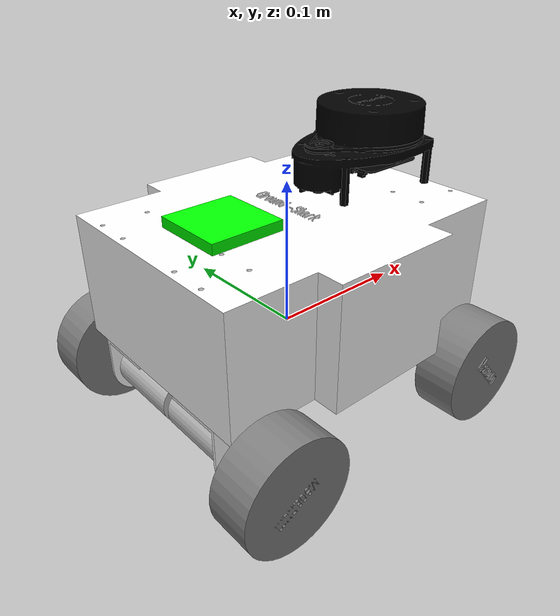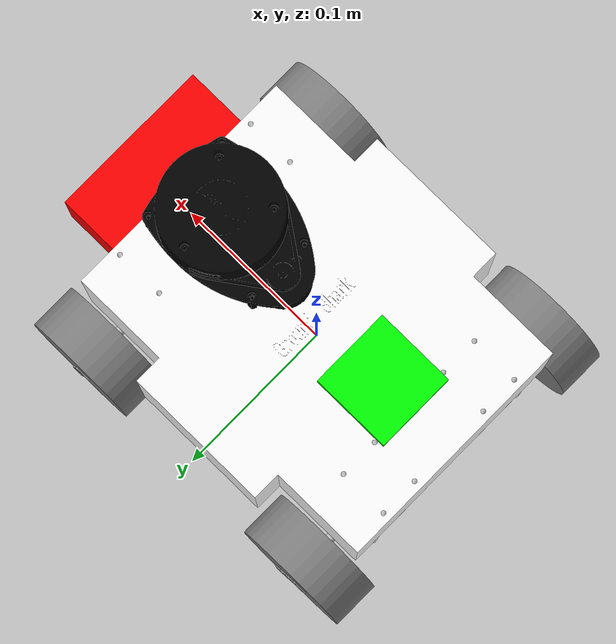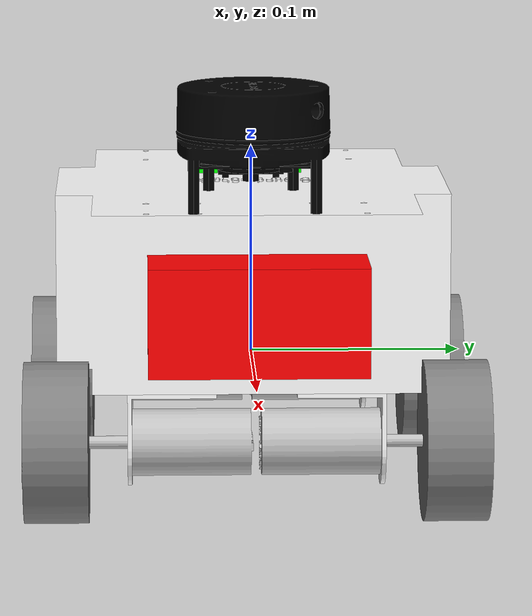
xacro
<?xml version="1.0" encoding="utf-8"?>
<!-- 仿真的目的是验证要行算法的有效性，所以简化控制流程，忽略麦克纳姆轮的运动学解算，-->
<!-- 直接认为车轮与车身是固定连接的，车身支持XY轴的平移和绕Z轴的旋转 -->
<!-- 也就是这个_fixed.urdf 只关心 Base_Link 即可，其他的都是多余的只影响视觉可删去 -->
<robot
    name="Ground-Shark_description" xmlns:xacro="http://ros.org/wiki/xacro">

    <!-- 引入Gazebo仿真所需的传感器和执行器 -->
    <xacro:include
        filename="$(find ground_shark_description)/urdf/Ground-Shark_description_fixed.gazebo.xacro" />

    <link name="base_footprint">
    </link>
    <joint
        name="footprint_joint"
        type="fixed">
        <origin
            xyz="0 0 0"
            rpy="0 0 0" />
        <parent
            link="base_footprint" />
        <child
            link="base_link" />
        <axis
            xyz="0 0 0" />
    </joint>
    <link
        name="base_link">
        <inertial>
            <origin
                xyz="2.5891E-08 2.6576E-08 0.041501"
                rpy="0 0 0" />
            <mass
                value="2.8841" />
            <inertia
                ixx="0.0085039"
                ixy="-1.3598E-10"
                ixz="-3.1189E-09"
                iyy="0.011435"
                iyz="-3.3424E-09"
                izz="0.016627" />
        </inertial>
        <visual>
            <origin
                xyz="0 0 0"
                rpy="0 0 0" />
            <geometry>
                <mesh
                    filename="package://ground_shark_description/meshes/Base_Link.STL" />
            </geometry>
            <material
                name="">
                <color
                    rgba="1 1 1 1" />
            </material>
        </visual>
        <collision>
            <origin
                xyz="0 0 0"
                rpy="0 0 0" />
            <geometry>
                <mesh
                    filename="package://ground_shark_description/meshes/Base_Link.STL" />
            </geometry>
        </collision>
    </link>
    <link name="imu_link">
        <inertial>
            <origin
                xyz="0 0 0"
                rpy="0 0 0" />
            <mass
                value="0.03513" />
            <inertia
                ixx="1e-5"
                ixy="0.0"
                ixz="0.0"
                iyy="1e-5"
                iyz="0.0"
                izz="1e-5" />
        </inertial>
        <visual>
            <origin
                xyz="0 0 0"
                rpy="0 0 0" />
            <geometry>
                <box size="0.05 0.05 0.01"></box>
            </geometry>
            <material
                name="green">
                <color
                    rgba="0 1 0 1" />
            </material>
        </visual>
        <collision>
            <origin
                xyz="0 0 0"
                rpy="0 0 0" />
            <geometry>
                <box size="0.05 0.05 0.01"></box>
            </geometry>
        </collision>
    </link>
    <joint
        name="imu_joint"
        type="fixed">
        <origin
            xyz="-0.05 0 0.085"
            rpy="0 0 0" />
        <parent
            link="base_link" />
        <child
            link="imu_link" />
        <axis
            xyz="0 0 0" />
    </joint>
    <link name="camera_link">
        <inertial>
            <origin
                xyz="0 0 0"
                rpy="0 0 0" />
            <mass
                value="0.073513" />
            <inertia
                ixx="1e-5"
                ixy="0.0"
                ixz="0.0"
                iyy="1e-5"
                iyz="0.0"
                izz="1e-5" />
        </inertial>
        <visual>
            <origin
                xyz="0 0 0"
                rpy="0 0 0" />
            <geometry>
                <box size="0.05 0.1 0.05"></box>
            </geometry>
            <material
                name="red">
                <color
                    rgba="1 0 0 1" />
            </material>
        </visual>
        <collision>
            <origin
                xyz="0 0 0"
                rpy="0 0 0" />
            <geometry>
                <box size="0.1 0.05 0.05"></box>
            </geometry>
        </collision>
    </link>
    <joint
        name="camera_joint"
        type="fixed">
        <origin
            xyz="0.12 0 0.04"
            rpy="0 0 0" />
        <parent
            link="base_link" />
        <child
            link="camera_link" />
        <axis
            xyz="0 0 0" />
    </joint>
    <link
        name="lidar_link">
        <inertial>
            <origin
                xyz="-0.011911 0.00042455 -0.023771"
                rpy="0 0 0" />
            <mass
                value="0.073513" />
            <inertia
                ixx="1.8143E-05"
                ixy="-3.1353E-07"
                ixz="3.2518E-07"
                iyy="2.3964E-05"
                iyz="1.0718E-08"
                izz="3.9441E-05" />
        </inertial>
        <visual>
            <origin
                xyz="0 0 0"
                rpy="0 0 0" />
            <geometry>
                <mesh
                    filename="package://ground_shark_description/meshes/Lader_Link.STL" />
            </geometry>
            <material
                name="black">
                <color
                    rgba="0 0 0 1" />
            </material>
        </visual>
        <collision>
            <origin
                xyz="0 0 0"
                rpy="0 0 0" />
            <geometry>
                <mesh
                    filename="package://ground_shark_description/meshes/Lader_Link.STL" />
            </geometry>
        </collision>
    </link>
    <joint
        name="Lidar_joint"
        type="fixed">
        <origin
            xyz="0.071496 -0.00087628 0.138"
            rpy="0 0 0" />
        <parent
            link="base_link" />
        <child
            link="lidar_link" />
        <axis
            xyz="0 0 0" />
    </joint>
    <link
        name="MotorBracket_FL_Link">
        <inertial>
            <origin
                xyz="-8.3267E-17 0.010181 -0.0087943"
                rpy="0 0 0" />
            <mass
                value="0.0060832" />
            <inertia
                ixx="2.1292E-06"
                ixy="4.3538E-21"
                ixz="-3.6923E-21"
                iyy="1.9108E-06"
                iyz="6.1537E-07"
                izz="1.8375E-06" />
        </inertial>
        <visual>
            <origin
                xyz="0 0 0"
                rpy="0 0 0" />
            <geometry>
                <mesh
                    filename="package://ground_shark_description/meshes/MotorBracket_FL_Link.STL" />
            </geometry>
            <material
                name="">
                <color
                    rgba="1 1 1 1" />
            </material>
        </visual>
        <collision>
            <origin
                xyz="0 0 0"
                rpy="0 0 0" />
            <geometry>
                <mesh
                    filename="package://ground_shark_description/meshes/MotorBracket_FL_Link.STL" />
            </geometry>
        </collision>
    </link>
    <joint
        name="MotorBracket_FL_joint"
        type="fixed">
        <origin
            xyz="0.085 0.037991 -0.002"
            rpy="0 0 0" />
        <parent
            link="base_link" />
        <child
            link="MotorBracket_FL_Link" />
        <axis
            xyz="0 0 0" />
    </joint>
    <link
        name="Motor_FL_Link">
        <inertial>
            <origin
                xyz="-9.5264704250142E-08 0.000494051151757539 -3.20373803028295E-07"
                rpy="0 0 0" />
            <mass
                value="0.0420923924205949" />
            <inertia
                ixx="1.37751524776014E-05"
                ixy="-1.14064183831158E-10"
                ixz="2.71882601075011E-10"
                iyy="4.99008312109064E-06"
                iyz="-3.84353111674059E-10"
                izz="1.3774517725084E-05" />
        </inertial>
        <visual>
            <origin
                xyz="0 0 0"
                rpy="0 0 0" />
            <geometry>
                <mesh
                    filename="package://ground_shark_description/meshes/Motor_FL_Link.STL" />
            </geometry>
            <material
                name="silvery">
                <color
                    rgba="0.7529411764705882 0.7529411764705882 0.7529411764705882 1" />
            </material>
        </visual>
        <collision>
            <origin
                xyz="0 0 0"
                rpy="0 0 0" />
            <!-- 碰撞这里可以改为简单的圆柱体 cyinder 来加快碰撞检测效率 -->
            <!-- 因为是麦克纳姆轮，实际中改为一个球体以表示能够万向移动 -->
            <geometry>
                <mesh
                    filename="package://ground_shark_description/meshes/Motor_FL_Link.STL" />
            </geometry>
        </collision>
    </link>
    <joint
        name="Motor_FL_joint"
        type="fixed">
        <origin
            xyz="0 -0.0079908 -0.0245"
            rpy="0 0 0" />
        <parent
            link="MotorBracket_FL_Link" />
        <child
            link="Motor_FL_Link" />
        <axis
            xyz="0 0 0" />
    </joint>
    <link
        name="Wheel_FL_Link">
        <inertial>
            <origin
                xyz="-1.7981E-07 -0.014993 -7.7803E-07"
                rpy="0 0 0" />
            <mass
                value="0.1326" />
            <inertia
                ixx="5.6556E-05"
                ixy="3.6894E-10"
                ixz="1.2476E-09"
                iyy="9.3196E-05"
                iyz="1.6011E-09"
                izz="5.655E-05" />
        </inertial>
        <visual>
            <origin
                xyz="0 0 0"
                rpy="0 0 0" />
            <geometry>
                <mesh
                    filename="package://ground_shark_description/meshes/Wheel_FL_Link.STL" />
            </geometry>
            <material
                name="gray">
                <color
                    rgba="0.5 0.5 0.5 1" />
            </material>
        </visual>
        <collision>
            <origin
                xyz="0 0 0"
                rpy="0 0 0" />
            <geometry>
                <mesh
                    filename="package://ground_shark_description/meshes/Wheel_FL_Link.STL" />
            </geometry>
        </collision>
    </link>
    <joint
        name="wheel_FL_joint"
        type="fixed">
        <origin
            xyz="0 0.0775 0"
            rpy="0 0 0" />
        <parent
            link="Motor_FL_Link" />
        <child
            link="Wheel_FL_Link" />
        <axis
            xyz="0 1 0" />
    </joint>
    <link
        name="MotorBracket_FR_Link">
        <inertial>
            <origin
                xyz="0 -0.0101809797663875 -0.00879428398855098"
                rpy="0 0 0" />
            <mass
                value="0.0060832210537672" />
            <inertia
                ixx="2.12921906667825E-06"
                ixy="-1.10839442466624E-21"
                ixz="1.63388096679982E-21"
                iyy="1.91083611877144E-06"
                iyz="-6.15365329682497E-07"
                izz="1.83749390010958E-06" />
        </inertial>
        <visual>
            <origin
                xyz="0 0 0"
                rpy="0 0 0" />
            <geometry>
                <mesh
                    filename="package://ground_shark_description/meshes/MotorBracket_FR_Link.STL" />
            </geometry>
            <material
                name="">
                <color
                    rgba="1 1 1 1" />
            </material>
        </visual>
        <collision>
            <origin
                xyz="0 0 0"
                rpy="0 0 0" />
            <geometry>
                <mesh
                    filename="package://ground_shark_description/meshes/MotorBracket_FR_Link.STL" />
            </geometry>
        </collision>
    </link>
    <joint
        name="MotorBracket_FR_joint"
        type="fixed">
        <origin
            xyz="0.085 -0.037991 -0.002"
            rpy="0 0 0" />
        <parent
            link="base_link" />
        <child
            link="MotorBracket_FR_Link" />
        <axis
            xyz="0 0 0" />
    </joint>
    <link
        name="Motor_FR_Link">
        <inertial>
            <origin
                xyz="-2.5972E-07 -0.00049405 -2.1038E-07"
                rpy="0 0 0" />
            <mass
                value="0.042092" />
            <inertia
                ixx="1.3774E-05"
                ixy="3.1167E-10"
                ixz="-3.1417E-11"
                iyy="4.9901E-06"
                iyz="2.5219E-10"
                izz="1.3775E-05" />
        </inertial>
        <visual>
            <origin
                xyz="0 0 0"
                rpy="0 0 0" />
            <geometry>
                <mesh
                    filename="package://ground_shark_description/meshes/Motor_FR_Link.STL" />
            </geometry>
            <material
                name="silvery">
                <color
                    rgba="0.7529411764705882 0.7529411764705882 0.7529411764705882 1" />
            </material>
        </visual>
        <collision>
            <origin
                xyz="0 0 0"
                rpy="0 0 0" />
            <geometry>
                <mesh
                    filename="package://ground_shark_description/meshes/Motor_FR_Link.STL" />
            </geometry>
        </collision>
    </link>
    <joint
        name="Motor_FR_joint"
        type="fixed">
        <origin
            xyz="0 0.0079908 -0.0245"
            rpy="0 0 0" />
        <parent
            link="MotorBracket_FR_Link" />
        <child
            link="Motor_FR_Link" />
        <axis
            xyz="0 0 0" />
    </joint>
    <link
        name="Wheel_FR_Link">
        <inertial>
            <origin
                xyz="7.27954014193011E-07 0.014992834588668 -3.28245396627458E-07"
                rpy="0 0 0" />
            <mass
                value="0.132597246667057" />
            <inertia
                ixx="5.65534796346194E-05"
                ixy="1.49742001797579E-09"
                ixz="3.00605535168159E-09"
                iyy="9.31961918555651E-05"
                iyz="-6.7636944845642E-10"
                izz="5.65525507281201E-05" />
        </inertial>
        <visual>
            <origin
                xyz="0 0 0"
                rpy="0 0 0" />
            <geometry>
                <mesh
                    filename="package://ground_shark_description/meshes/Wheel_FR_Link.STL" />
            </geometry>
            <material
                name="gray">
                <color
                    rgba="0.5 0.5 0.5 1" />
            </material>
        </visual>
        <collision>
            <origin
                xyz="0 0 0"
                rpy="0 0 0" />
            <geometry>
                <mesh
                    filename="package://ground_shark_description/meshes/Wheel_FR_Link.STL" />
            </geometry>
        </collision>
    </link>
    <joint
        name="wheel_FR_joint"
        type="fixed">
        <origin
            xyz="0 -0.0775 0"
            rpy="0 0 0" />
        <parent
            link="Motor_FR_Link" />
        <child
            link="Wheel_FR_Link" />
        <axis
            xyz="0 -1 0" />
    </joint>
    <link
        name="MotorBracket_BL_Link">
        <inertial>
            <origin
                xyz="-5.5511E-17 0.010181 -0.0087943"
                rpy="0 0 0" />
            <mass
                value="0.0060832" />
            <inertia
                ixx="2.1292E-06"
                ixy="3.0379E-21"
                ixz="-3.2873E-21"
                iyy="1.9108E-06"
                iyz="6.1537E-07"
                izz="1.8375E-06" />
        </inertial>
        <visual>
            <origin
                xyz="0 0 0"
                rpy="0 0 0" />
            <geometry>
                <mesh
                    filename="package://ground_shark_description/meshes/MotorBracket_BL_Link.STL" />
            </geometry>
            <material
                name="">
                <color
                    rgba="1 1 1 1" />
            </material>
        </visual>
        <collision>
            <origin
                xyz="0 0 0"
                rpy="0 0 0" />
            <geometry>
                <mesh
                    filename="package://ground_shark_description/meshes/MotorBracket_BL_Link.STL" />
            </geometry>
        </collision>
    </link>
    <joint
        name="MotorBracket_BL_joint"
        type="fixed">
        <origin
            xyz="-0.085 0.037991 -0.002"
            rpy="0 0 0" />
        <parent
            link="base_link" />
        <child
            link="MotorBracket_BL_Link" />
        <axis
            xyz="0 0 0" />
    </joint>
    <link
        name="Motor_BL_Link">
        <inertial>
            <origin
                xyz="-9.52647042362642E-08 0.000494051151757761 -3.20373802972784E-07"
                rpy="0 0 0" />
            <mass
                value="0.0420923924205944" />
            <inertia
                ixx="1.37751524776011E-05"
                ixy="-1.14064183836825E-10"
                ixz="2.71882601070878E-10"
                iyy="4.99008312109062E-06"
                iyz="-3.84353111614291E-10"
                izz="1.37745177250838E-05" />
        </inertial>
        <visual>
            <origin
                xyz="0 0 0"
                rpy="0 0 0" />
            <geometry>
                <mesh
                    filename="package://ground_shark_description/meshes/Motor_BL_Link.STL" />
            </geometry>
            <material
                name="silvery">
                <color
                    rgba="0.7529411764705882 0.7529411764705882 0.7529411764705882 1" />
            </material>
        </visual>
        <collision>
            <origin
                xyz="0 0 0"
                rpy="0 0 0" />
            <geometry>
                <mesh
                    filename="package://ground_shark_description/meshes/Motor_BL_Link.STL" />
            </geometry>
        </collision>
    </link>
    <joint
        name="Motor_BL_joint"
        type="fixed">
        <origin
            xyz="0 -0.0079908 -0.0245"
            rpy="0 0 0" />
        <parent
            link="MotorBracket_BL_Link" />
        <child
            link="Motor_BL_Link" />
        <axis
            xyz="0 0 0" />
    </joint>
    <link
        name="Wheel_BL_Link">
        <inertial>
            <origin
                xyz="6.68215741628231E-08 -0.0149928345886679 -7.95736743344766E-07"
                rpy="0 0 0" />
            <mass
                value="0.132597246667058" />
            <inertia
                ixx="5.6554543362845E-05"
                ixy="-1.38547605071664E-10"
                ixz="2.62997090832959E-09"
                iyy="9.31961918555653E-05"
                iyz="1.63723758305458E-09"
                izz="5.6551486999895E-05" />
        </inertial>
        <visual>
            <origin
                xyz="0 0 0"
                rpy="0 0 0" />
            <geometry>
                <mesh
                    filename="package://ground_shark_description/meshes/Wheel_BL_Link.STL" />
            </geometry>
            <material
                name="gray">
                <color
                    rgba="0.5 0.5 0.5 1" />
            </material>
        </visual>
        <collision>
            <origin
                xyz="0 0 0"
                rpy="0 0 0" />
            <geometry>
                <mesh
                    filename="package://ground_shark_description/meshes/Wheel_BL_Link.STL" />
            </geometry>
        </collision>
    </link>
    <joint
        name="wheel_BL_joint"
        type="fixed">
        <origin
            xyz="0 0.0775 0"
            rpy="0 0 0" />
        <parent
            link="Motor_BL_Link" />
        <child
            link="Wheel_BL_Link" />
        <axis
            xyz="0 1 0" />
    </joint>
    <link
        name="MotorBracket_BR_Link">
        <inertial>
            <origin
                xyz="-0.17 -0.086162520629411 -0.00879428398855092"
                rpy="0 0 0" />
            <mass
                value="0.00608322105376718" />
            <inertia
                ixx="2.12921906667825E-06"
                ixy="-1.34967761970091E-21"
                ixz="2.06216805455324E-21"
                iyy="1.91083611877144E-06"
                iyz="-6.153653296825E-07"
                izz="1.83749390010958E-06" />
        </inertial>
        <visual>
            <origin
                xyz="0 0 0"
                rpy="0 0 0" />
            <geometry>
                <mesh
                    filename="package://ground_shark_description/meshes/MotorBracket_BR_Link.STL" />
            </geometry>
            <material
                name="">
                <color
                    rgba="1 1 1 1" />
            </material>
        </visual>
        <collision>
            <origin
                xyz="0 0 0"
                rpy="0 0 0" />
            <geometry>
                <mesh
                    filename="package://ground_shark_description/meshes/MotorBracket_BR_Link.STL" />
            </geometry>
        </collision>
    </link>
    <joint
        name="MotorBracket_BR_joint"
        type="fixed">
        <origin
            xyz="0.085 0.037991 -0.002"
            rpy="0 0 0" />
        <parent
            link="base_link" />
        <child
            link="MotorBracket_BR_Link" />
        <axis
            xyz="0 0 0" />
    </joint>
    <link
        name="Motor_BR_Link">
        <inertial>
            <origin
                xyz="0.00049405 -2.5972E-07 -2.1038E-07"
                rpy="0 0 0" />
            <mass
                value="0.042092" />
            <inertia
                ixx="4.9901E-06"
                ixy="-3.1167E-10"
                ixz="-2.5219E-10"
                iyy="1.3774E-05"
                iyz="-3.1417E-11"
                izz="1.3775E-05" />
        </inertial>
        <visual>
            <origin
                xyz="0 0 0"
                rpy="0 0 0" />
            <geometry>
                <mesh
                    filename="package://ground_shark_description/meshes/Motor_BR_Link.STL" />
            </geometry>
            <material
                name="silvery">
                <color
                    rgba="0.7529411764705882 0.7529411764705882 0.7529411764705882 1" />
            </material>
        </visual>
        <collision>
            <origin
                xyz="0 0 0"
                rpy="0 0 0" />
            <geometry>
                <mesh
                    filename="package://ground_shark_description/meshes/Motor_BR_Link.STL" />
            </geometry>
        </collision>
    </link>
    <joint
        name="Motor_BR_joint"
        type="fixed">
        <origin
            xyz="-0.17 -0.067991 -0.0245"
            rpy="0 0 -1.5708" />
        <parent
            link="MotorBracket_BR_Link" />
        <child
            link="Motor_BR_Link" />
        <axis
            xyz="0 0 0" />
    </joint>
    <link
        name="Wheel_BR_Link">
        <inertial>
            <origin
                xyz="-1.0632E-05 0.014993 -1.9304E-05"
                rpy="0 0 0" />
            <mass
                value="0.1326" />
            <inertia
                ixx="5.6551E-05"
                ixy="-9.5754E-10"
                ixz="-2.5947E-09"
                iyy="9.3196E-05"
                iyz="-1.3352E-09"
                izz="5.6555E-05" />
        </inertial>
        <visual>
            <origin
                xyz="0 0 0"
                rpy="0 0 0" />
            <geometry>
                <mesh
                    filename="package://ground_shark_description/meshes/Wheel_BR_Link.STL" />
            </geometry>
            <material
                name="gray">
                <color
                    rgba="0.5 0.5 0.5 1" />
            </material>
        </visual>
        <collision>
            <origin
                xyz="0 0 0"
                rpy="0 0 0" />
            <geometry>
                <mesh
                    filename="package://ground_shark_description/meshes/Wheel_BR_Link.STL" />
            </geometry>
        </collision>
    </link>
    <joint
        name="wheel_BR_joint"
        type="fixed">
        <origin
            xyz="0.0775 1.0167E-05 1.8655E-05"
            rpy="0 0 1.5708" />
        <parent
            link="Motor_BR_Link" />
        <child
            link="Wheel_BR_Link" />
        <axis
            xyz="0 -1 0" />
    </joint>
</robot>

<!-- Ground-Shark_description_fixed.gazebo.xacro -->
<robot name="Ground-Shark" xmlns:xacro="http://www.ros.org/wiki/xacro">

  <!-- 宏定义 -->
  <xacro:macro name="default_Link" params="link_name">
    <gazebo reference="${link_name}">
      <material>Gazebo/Black</material>
      <!-- 摩擦相关 -->
      <!-- 主摩擦系数，决定与地面主方向的摩擦力 -->
      <mu1>0.5</mu1>
      <!-- 次摩擦系数，通常用来描述侧向或次要方向的摩擦力 -->
      <mu2>0.5</mu2>
      <!-- 指定 mu1 的方向，这里希望是万向的 -->
      <fdir1>0 0 0</fdir1>
      <!-- 接触相关 -->
      <!-- Link速度的指数衰减因子，影响接触修正时速度的衰减（例如 0.3 表示保留 70% 的前一速度） -->
      <!-- 最大接触修正速度，防止修正速度过大 -->
      <maxVel>1.0</maxVel>
      <!-- 当穿透深度超过此值时施加接触修正脉冲 -->
      <!-- 接触刚度，决定碰撞时模型的“硬度”，值越大模型越难被压缩 -->
      <kp>100000.0</kp>
      <!-- 接触阻尼系数，影响碰撞过程中的能量耗散 -->
      <kd>500.0</kd>
      <!-- 可选：定义两个实体之间允许的最大接触数（这里在 physics 配置中通常会指定） -->
      <!-- 材质 -->
      <!-- 对激光的反射强度 -->
    </gazebo>
  </xacro:macro>

  <!-- 在Gazebo中joint也有一些特定的专属标签，主要是配置力矩相关，一般用不上 -->

  <!-- 调用宏定义 -->
  <xacro:default_Link link_name="Wheel_FL_Link" />
  <xacro:default_Link link_name="Wheel_FR_Link" />
  <xacro:default_Link link_name="Wheel_BL_Link" />
  <xacro:default_Link link_name="Wheel_BR_Link" />
  <xacro:default_Link link_name="base_link" />
  <xacro:default_Link link_name="base_footprint" />

  <!-- 设置属性 -->
  <gazebo reference="base_footprint">
    <material>Gazebo/White</material>
  </gazebo>
  <gazebo reference="base_link">
    <material>Gazebo/White</material>
  </gazebo>
  <gazebo reference="camera_link">
    <material>Gazebo/Red</material>
  </gazebo>
  <gazebo reference="imu_link">
    <material>Gazebo/Green</material>
  </gazebo>
  <gazebo reference="lidar_link">
    <material>Gazebo/Black</material>
  </gazebo>

  <!-- 加载joint发布插件，向ROS端传输Gazebo中模型的joint状态 -->
  <!-- 事实上，spawm_model 加载的我们的fixed小车整体并没有可活动的关节，所以不使用此插件，直接在ROS端发布一次各link之间的静态tf变换关系亦可-->

  <!-- 加载万向控制插件控制车体，Planar Move Plugin仅适用与地面2D控制，空间3维控制使用xxx -->
  <arg name="model_name" default="ground_shark"/> <!-- 模型名称 -->
  <gazebo>
    <plugin name="object_controller" filename="libgazebo_ros_planar_move.so">
      <commandTopic>cmd_vel</commandTopic>
      <odometryTopic>/Gazebo/Odom_True</odometryTopic>
      <odometryFrame>Odom_True</odometryFrame>
      <odometryRate>150.0</odometryRate>
      <robotBaseFrame>Base_Link</robotBaseFrame>
      <cmdTimeout>-1.0</cmdTimeout>
    </plugin>
  </gazebo>

  <!-- 在 Camera_Link 上加载相机测量环境图像 -->
  <gazebo reference="camera_link">
    <sensor type="camera" name="camera">
      <always_on>true</always_on>
      <camera name="head">
        <horizontal_fov>1.3962634</horizontal_fov>
        <image>
          <width>640</width>
          <height>480</height>
          <format>R8G8B8</format>
        </image>
        <clip>
          <near>0.02</near>
          <far>300</far>
        </clip>
        <noise>
          <type>gaussian</type>
          <mean>0.0</mean>
          <stddev>0.007</stddev>
        </noise>
      </camera>
      <plugin name="camera_controller" filename="libgazebo_ros_camera.so">
        <alwaysOn>true</alwaysOn>
        <updateRate>30.0</updateRate>
        <cameraName>camera1</cameraName>
        <imageTopicName>image_raw</imageTopicName>
        <cameraInfoTopicName>camera_info</cameraInfoTopicName>
        <frameName>camera_link</frameName>
        <hackBaseline>0.07</hackBaseline>
        <distortionK1>0.0</distortionK1>
        <distortionK2>0.0</distortionK2>
        <distortionK3>0.0</distortionK3>
        <distortionT1>0.0</distortionT1>
        <distortionT2>0.0</distortionT2>
      </plugin>
    </sensor>
  </gazebo>

  <!-- 在 IMU_Link 上加载IMU测量插件检测运动 -->
  <gazebo reference="imu_link">
    <gravity>true</gravity>
    <sensor name="imu_sensor" type="imu">
      <always_on>true</always_on>
      <update_rate>200</update_rate>
      <visualize>true</visualize>
      <topic>/ICM42688P/imu</topic>
      <plugin name="imu_plugin" filename="libgazebo_ros_imu_sensor.so" >
        <topicName>/ICM42688P/imu</topicName>
        <bodyName>imu_link</bodyName>
        <updateRateHZ>200.0</updateRateHZ>
        <gaussianNoise>0.00329</gaussianNoise>
        <xyzOffset>0 0 0</xyzOffset>
        <rpyOffset>0 0 0</rpyOffset>
        <frameName>imu_link</frameName>
        <initialOrientationAsReference>false</initialOrientationAsReference>
      </plugin>
      <pose>0 0 0 0 0 0</pose>
    </sensor>
  </gazebo>

  <!-- 在 Lader_Link 加载激光雷达测量插件检测障碍点云 -->
  <gazebo reference="lidar_link">
    <sensor type="ray" name="laser">
      <pose>0 0 0 0 0 0</pose>
      <visualize>true</visualize>
      <!-- 每秒扫描次数 -->
      <update_rate>10</update_rate>
      <ray>
        <scan>
          <horizontal>
            <!-- 单次采样个数 -->
            <samples>800</samples>
            <!-- 样本分辨率 -->
            <resolution>1</resolution>
            <!-- 扫描范围 -->
            <min_angle>-3.1415926</min_angle>
            <max_angle>3.1415926</max_angle>
          </horizontal>
        </scan>
        <range>
          <!-- 有效测量距离 -->
          <min>0.15</min>
          <max>12.0</max>
          <!-- 测量精度 0.5mm -->
          <resolution>0.0005</resolution>
        </range>
        <noise>
          <type>gaussian</type>
          <mean>0.0</mean>
          <stddev>0.0005</stddev>
        </noise>
      </ray>
      <plugin name="gazebo_ros_laser_scan_controller" filename="libgazebo_ros_laser.so">
        <topicName>/rplidarA1M8/LaserScan</topicName>
        <frameName>lidar_link</frameName>
      </plugin>
    </sensor>
  </gazebo>

</robot>
